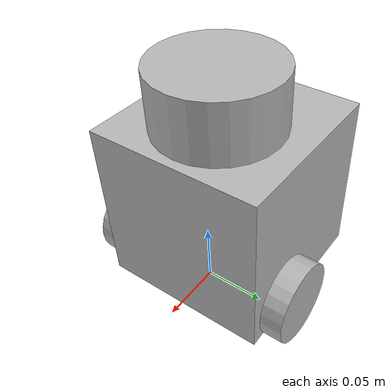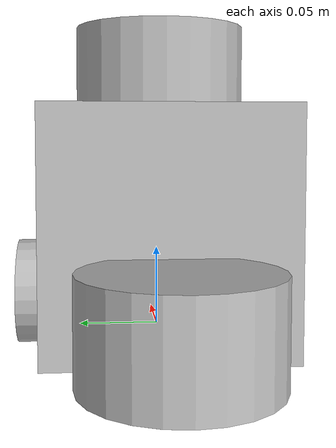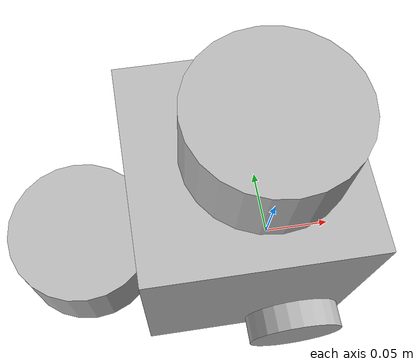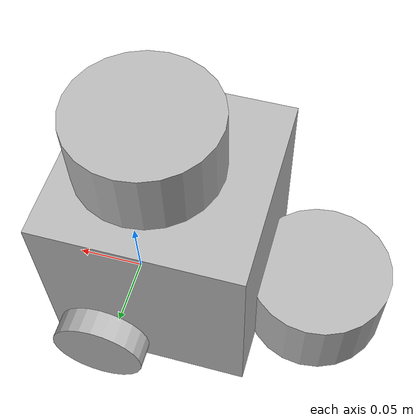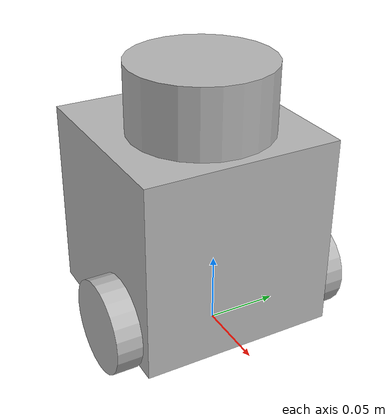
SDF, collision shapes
<?xml version="1.0" ?>
<sdf version="1.5">
  <model name="turtlebot3_burger">

    <link name="base">

      <inertial>
        <pose>-0.032 0 0.070 0 0 0</pose>
        <inertia>
          <ixx>0.001</ixx>
          <ixy>0.000</ixy>
          <ixz>0.000</ixz>
          <iyy>0.001</iyy>
          <iyz>0.000</iyz>
          <izz>0.001</izz>
        </inertia>
        <mass>1.0</mass>
      </inertial>

      <collision name="base_collision">
        <pose>-0.032 0 0.070 0 0 0</pose>
        <geometry>
          <box>
            <size>0.140 0.140 0.140</size>
          </box>
        </geometry>
      </collision>

      <visual name="base_visual">
        <pose>-0.032 0 0 0 0 0</pose>
        <geometry>
          <mesh>
            <uri>model://turtlebot3_burger/meshes/burger_base.dae</uri>
            <scale>0.001 0.001 0.001</scale>
          </mesh>
        </geometry>
      </visual>

      <collision name="caster_collision">
        <pose>-0.081 0 -0.004 0 0 0</pose>
        <geometry>
          <sphere>
            <radius>0.005000</radius>
          </sphere>
        </geometry>
        <surface>
          <friction>
            <ode>
              <mu>100000.0</mu>
              <mu2>100000.0</mu2>
              <fdir1>0 0 0</fdir1>
              <slip1>0</slip1>
              <slip2>0</slip2>
            </ode>
          </friction>
        </surface>
      </collision>
    </link>

  <link name="lidar">
    <inertial>
      <pose>-0.020 0 0.161 0 0 0</pose>
      <inertia>
        <ixx>0.001</ixx>
        <ixy>0.000</ixy>
        <ixz>0.000</ixz>
        <iyy>0.001</iyy>
        <iyz>0.000</iyz>
        <izz>0.001</izz>
      </inertia>
      <mass>0.125</mass>
    </inertial>

    <collision name="lidar_sensor_collision">
        <pose>-0.020 0 0.161 0 0 0</pose>
        <geometry>
          <cylinder>
            <radius>0.0508</radius>
            <length>0.055</length>
          </cylinder>
        </geometry>
      </collision>

      <visual name="lidar_sensor_visual">
        <pose>-0.032 0 0.171 0 0 0</pose>
        <geometry>
          <mesh>
            <uri>model://turtlebot3_burger/meshes/lds.dae</uri>
            <scale>0.001 0.001 0.001</scale>
          </mesh>
        </geometry>
      </visual>

      <sensor name="hls_lfcd_lds" type="ray">
        <always_on>1</always_on>
        <visualize>0</visualize>
        <pose>-0.032 0 0.171 0 0 0</pose>
        <update_rate>1800</update_rate>
        <ray>
          <scan>
            <horizontal>
              <samples>360</samples>
              <resolution>1.000000</resolution>
              <min_angle>0.000000</min_angle>
              <max_angle>6.280000</max_angle>
            </horizontal>
          </scan>
          <range>
            <min>0.120000</min>
            <max>3.5</max>
            <resolution>0.015000</resolution>
          </range>
          <noise>
            <type>gaussian</type>
            <mean>0.0</mean>
            <stddev>0.01</stddev>
          </noise>
        </ray>
      </sensor>
    </link>

<link name="lidar2">
    <inertial>
      <pose>-0.140 0 0.031 0 0 0</pose>
      <inertia>
        <ixx>0.001</ixx>
        <ixy>0.000</ixy>
        <ixz>0.000</ixz>
        <iyy>0.001</iyy>
        <iyz>0.000</iyz>
        <izz>0.001</izz>
      </inertia>
      <mass>0.125</mass>
    </inertial>

    <collision name="lidar_sensor_collision2">
        <pose>-0.140 0 0.031 0 0 0</pose>
        <geometry>
          <cylinder>
            <radius>0.0508</radius>
            <length>0.055</length>
          </cylinder>
        </geometry>
      </collision>

      <visual name="lidar_sensor_visual2">
        <pose>-0.152 0 0.041 0 0 0</pose>
        <geometry>
          <mesh>
            <uri>model://turtlebot3_burger/meshes/lds.dae</uri>
            <scale>0.00001 0.00001 0.00001</scale>
          </mesh>
        </geometry>
      </visual>

      <sensor name="hls_lfcd_lds2" type="ray">
        <always_on>1</always_on>
        <visualize>0</visualize>
        <pose>-0.152 0 0.041 0 0 0</pose>
        <update_rate>1800</update_rate>
        <ray>
          <scan>
            <horizontal>
              <samples>360</samples>
              <resolution>1.000000</resolution>
              <min_angle>0.000000</min_angle>
              <max_angle>6.280000</max_angle>
            </horizontal>
          </scan>
          <range>
            <min>0.120000</min>
            <max>3.5</max>
            <resolution>0.015000</resolution>
          </range>
          <noise>
            <type>gaussian</type>
            <mean>0.0</mean>
            <stddev>0.01</stddev>
          </noise>
        </ray>
      </sensor>
    </link>

    <link name="left_wheel">

      <inertial>
        <pose>0 0.08 0.023 -1.57 0 0</pose>
        <inertia>
          <ixx>0.001</ixx>
          <ixy>0.000</ixy>
          <ixz>0.000</ixz>
          <iyy>0.001</iyy>
          <iyz>0.000</iyz>
          <izz>0.001</izz>
        </inertia>
        <mass>0.1</mass>
      </inertial>

      <collision name="left_wheel_collision">
        <pose>0 0.08 0.023 -1.57 0 0</pose>
        <geometry>
          <cylinder>
            <radius>0.033</radius>
            <length>0.018</length>
          </cylinder>
        </geometry>
          <surface>
          <!-- This friction pamareter don't contain reliable data!! -->
            <friction>
              <ode>
                <mu>100000.0</mu>
                <mu2>100000.0</mu2>
                <fdir1>0 0 0</fdir1>
                <slip1>0.0</slip1>
                <slip2>0.0</slip2>
              </ode>
          </friction>
        </surface>
      </collision>

      <visual name="left_wheel_visual">
        <pose>0 0.08 0.023 0 0 0</pose>
        <geometry>
          <mesh>
            <uri>model://turtlebot3_burger/meshes/left_tire.dae</uri>
            <scale>0.001 0.001 0.001</scale>
          </mesh>
        </geometry>
      </visual>
    </link>

    <link name="right_wheel">

      <inertial>
        <pose>0.0 -0.08 0.023 -1.57 0 0</pose>
        <inertia>
          <ixx>0.001</ixx>
          <ixy>0.000</ixy>
          <ixz>0.000</ixz>
          <iyy>0.001</iyy>
          <iyz>0.000</iyz>
          <izz>0.001</izz>
        </inertia>
        <mass>0.1</mass>
      </inertial>

      <collision name="right_wheel_collision">
        <pose>0.0 -0.08 0.023 -1.57 0 0</pose>
        <geometry>
          <cylinder>
            <radius>0.033</radius>
            <length>0.018</length>
          </cylinder>
        </geometry>
          <surface>
          <!-- This friction pamareter don't contain reliable data!! -->
            <friction>
              <ode>
                <mu>100000.0</mu>
                <mu2>100000.0</mu2>
                <fdir1>0 0 0</fdir1>
                <slip1>0.0</slip1>
                <slip2>0.0</slip2>
              </ode>
          </friction>
        </surface>
      </collision>

      <visual name="right_wheel_visual">
        <pose>0.0 -0.08 0.023 0 0 0</pose>
        <geometry>
          <mesh>
            <uri>model://turtlebot3_burger/meshes/right_tire.dae</uri>
            <scale>0.001 0.001 0.001</scale>
          </mesh>
        </geometry>
      </visual>
    </link>

    <joint name="left_wheel_joint" type="revolute">
      <parent>base</parent>
      <child>left_wheel</child>
      <pose>0.0 0.08 0.023 -1.57 0 0</pose>
      <axis>
        <xyz>0 1 0</xyz>
      </axis>
    </joint>

    <joint name="right_wheel_joint" type="revolute">
      <parent>base</parent>
      <child>right_wheel</child>
      <pose>0.0 -0.08 0.023 -1.57 0 0</pose>
      <axis>
        <xyz>0 1 0</xyz>
      </axis>
    </joint>

    <joint name="lidar_joint" type="fixed">
      <parent>base</parent>
      <child>lidar</child>
      <pose>-0.032 0 0.171 0 0 0</pose>
      <axis>
        <xyz>0 0 1</xyz>
        <use_parent_model_frame>true</use_parent_model_frame>
      </axis>
    </joint>

<joint name="lidar_joint2" type="fixed">
      <parent>base</parent>
      <child>lidar2</child>
      <pose>-0.032 0 0.371 0 0 0</pose>
      <axis>
        <xyz>0 0 1</xyz>
        <use_parent_model_frame>true</use_parent_model_frame>
      </axis>
    </joint>
  <static>0</static>
  </model>
</sdf>
